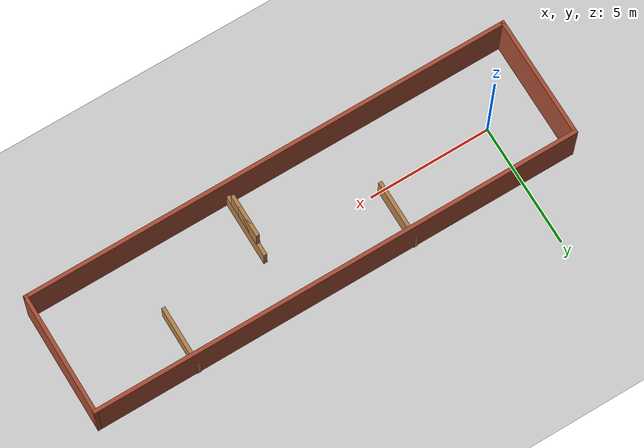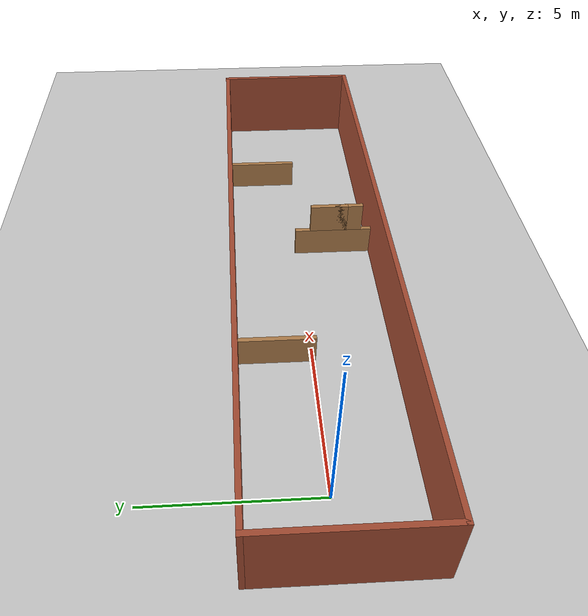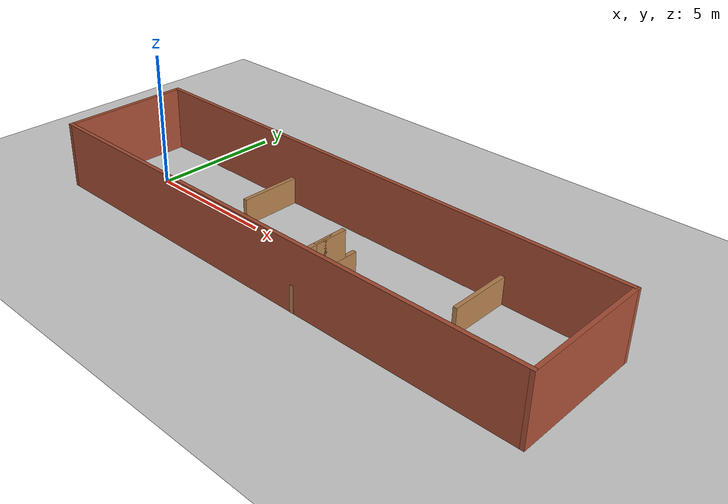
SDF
<sdf version="1.6">
 <world name="default">
  <light name="sun" type="directional">
   <pose>0 0 10 0 -0 0</pose>
   <diffuse>0.8 0.8 0.8 1</diffuse>
   <specular>0.2 0.2 0.2 1</specular>
   <attenuation>
    <range>1000</range>
    <constant>0.9</constant>
    <linear>0.01</linear>
    <quadratic>0.001</quadratic>
   </attenuation>
   <direction>-0.5 0.1 -0.9</direction>
  </light>
  <model name="ground_plane">
   <static>1</static>
   <link name="link">
    <collision name="collision">
     <geometry><plane><normal>0 0 1</normal><size>100 100</size></plane></geometry>
     <surface><friction><ode><mu>100</mu><mu2>50</mu2></ode></friction></surface>
    </collision>
    <visual name="visual">
     <cast_shadows>0</cast_shadows>
     <geometry><plane><normal>0 0 1</normal><size>100 100</size></plane></geometry>
     <material>
      <script><uri>file://media/materials/scripts/gazebo.material</uri><name>Gazebo/Grey</name></script>
     </material>
    </visual>
   </link>
  </model>
  <gravity>0 0 -9.8</gravity>
  <magnetic_field>6e-06 2.3e-05 -4.2e-05</magnetic_field>
  <atmosphere type="adiabatic"/>
  <physics name="default_physics" default="0" type="ode">
   <max_step_size>0.001</max_step_size>
   <real_time_factor>1</real_time_factor>
   <real_time_update_rate>1000</real_time_update_rate>
  </physics>
  <scene><ambient>0.4 0.4 0.4 1</ambient><background>0.7 0.7 0.7 1</background><shadows>1</shadows></scene>
  <spherical_coordinates>
   <surface_model>EARTH_WGS84</surface_model>
   <latitude_deg>0</latitude_deg>
   <longitude_deg>0</longitude_deg>
   <elevation>0</elevation>
   <heading_deg>0</heading_deg>
  </spherical_coordinates>
  <model name="wall_demo">
   <pose>7.83298 -0.099471 0 0 -0 0</pose>
   <link name="Wall_0">
    <collision name="Wall_0_Collision">
     <geometry><box><size>20 0.15 2.5</size></box></geometry>
     <pose>0 0 1.25 0 -0 0</pose>
    </collision>
    <visual name="Wall_0_Visual">
     <pose>0 0 1.25 0 -0 0</pose>
     <geometry><box><size>20 0.15 2.5</size></box></geometry>
     <material>
      <script><uri>file://media/materials/scripts/gazebo.material</uri><name>Gazebo/Bricks</name></script>
      <ambient>1 1 1 1</ambient>
     </material>
     <meta><layer>0</layer></meta>
    </visual>
    <pose>-0 -2.43507 0 0 -0 0</pose>
   </link>
   <link name="Wall_11">
    <collision name="Wall_11_Collision">
     <geometry><box><size>2.75 0.15 1.0</size></box></geometry>
     <pose>0 0 0.5 0 -0 0</pose>
    </collision>
    <visual name="Wall_11_Visual">
     <pose>0 0 0.5 0 -0 0</pose>
     <geometry><box><size>2.75 0.15 1.0</size></box></geometry>
     <material>
      <script><uri>file://media/materials/scripts/gazebo.material</uri><name>Gazebo/Wood</name></script>
      <ambient>1 1 1 1</ambient>
     </material>
     <meta><layer>0</layer></meta>
    </visual>
    <pose>1.70255 -1.14028 0 0 -0 1.5708</pose>
   </link>
   <link name="Wall_17">
    <collision name="Wall_17_Collision">
     <geometry><box><size>1.75 0.15 1.0</size></box></geometry>
     <pose>0 0 1.5 0 -0 0</pose>
    </collision>
    <visual name="Wall_17_Visual">
     <pose>0 0 1.5 0 -0 0</pose>
     <geometry><box><size>1.75 0.15 1.0</size></box></geometry>
     <material>
      <script><uri>file://media/materials/scripts/gazebo.material</uri><name>Gazebo/Wood</name></script>
      <ambient>1 1 1 1</ambient>
     </material>
     <meta><layer>0</layer></meta>
    </visual>
    <pose>1.70255 -1.14028 0 0 -0 1.5708</pose>
   </link>
   <link name="Wall_19">
    <collision name="Wall_19_Collision">
     <geometry><box><size>0.75 0.15 1.0</size></box></geometry>
     <pose>0 0 1.5 0 -0 0</pose>
    </collision>
    <visual name="Wall_19_Visual">
     <pose>0 0 1.5 0 -0 0</pose>
     <geometry><box><size>0.75 0.15 1.0</size></box></geometry>
     <material>
      <script><uri>file://media/materials/scripts/gazebo.material</uri><name>Gazebo/Wood</name></script>
      <ambient>1 1 1 1</ambient>
     </material>
     <meta><layer>0</layer></meta>
    </visual>
    <pose>1.70255 -1.14028 0 0 -0 1.5708</pose>
   </link>
   <link name="Wall_13">
    <collision name="Wall_13_Collision">
     <geometry><box><size>2.5 0.15 1.0</size></box></geometry>
     <pose>0 0 0.5 0 -0 0</pose>
    </collision>
    <visual name="Wall_13_Visual">
     <pose>0 0 0.5 0 -0 0</pose>
     <geometry><box><size>2.5 0.15 1.0</size></box></geometry>
     <material>
      <script><uri>file://media/materials/scripts/gazebo.material</uri><name>Gazebo/Wood</name></script>
      <ambient>1 1 1 1</ambient>
     </material>
     <meta><layer>0</layer></meta>
    </visual>
    <pose>-3.2474 1.26528 0 0 -0 -1.5708</pose>
   </link>
   <link name="Wall_15">
    <collision name="Wall_15_Collision">
     <geometry><box><size>5 0.15 2.5</size></box></geometry>
     <pose>0 0 1.25 0 -0 0</pose>
    </collision>
    <visual name="Wall_15_Visual">
     <pose>0 0 1.25 0 -0 0</pose>
     <geometry><box><size>5 0.15 2.5</size></box></geometry>
     <material>
      <script><uri>file://media/materials/scripts/gazebo.material</uri><name>Gazebo/Bricks</name></script>
      <ambient>1 1 1 1</ambient>
     </material>
     <meta><layer>0</layer></meta>
    </visual>
    <pose>-9.925 -0.010074 0 0 -0 -1.5708</pose>
   </link>
   <link name="Wall_6">
    <collision name="Wall_6_Collision">
     <geometry><box><size>5 0.15 2.5</size></box></geometry>
     <pose>0 0 1.25 0 -0 0</pose>
    </collision>
    <visual name="Wall_6_Visual">
     <pose>0 0 1.25 0 -0 0</pose>
     <geometry><box><size>5 0.15 2.5</size></box></geometry>
     <material>
      <script><uri>file://media/materials/scripts/gazebo.material</uri><name>Gazebo/Bricks</name></script>
      <ambient>1 1 1 1</ambient>
     </material>
     <meta><layer>0</layer></meta>
    </visual>
    <pose>9.925 -0.010074 0 0 -0 1.5708</pose>
   </link>
   <link name="Wall_7">
    <collision name="Wall_7_Collision">
     <geometry><box><size>20 0.15 2.5</size></box></geometry>
     <pose>0 0 1.25 0 -0 0</pose>
    </collision>
    <visual name="Wall_7_Visual">
     <pose>0 0 1.25 0 -0 0</pose>
     <geometry><box><size>20 0.15 2.5</size></box></geometry>
     <material>
      <script><uri>file://media/materials/scripts/gazebo.material</uri><name>Gazebo/Bricks</name></script>
      <ambient>1 1 1 1</ambient>
     </material>
     <meta><layer>0</layer></meta>
    </visual>
    <pose>-0 2.41493 0 0 -0 3.14159</pose>
   </link>
   <link name="Wall_9">
    <collision name="Wall_9_Collision">
     <geometry><box><size>2.5 0.15 1.0</size></box></geometry>
     <pose>0 0 0.5 0 -0 0</pose>
    </collision>
    <visual name="Wall_9_Visual">
     <pose>0 0 0.5 0 -0 0</pose>
     <geometry><box><size>2.5 0.15 1.0</size></box></geometry>
     <material>
      <script><uri>file://media/materials/scripts/gazebo.material</uri><name>Gazebo/Wood</name></script>
      <ambient>1 1 1 1</ambient>
     </material>
     <meta><layer>0</layer></meta>
    </visual>
    <pose>5.8198 1.26528 0 0 -0 -1.5708</pose>
   </link>
   <static>1</static>
  </model>
 </world>
</sdf>
